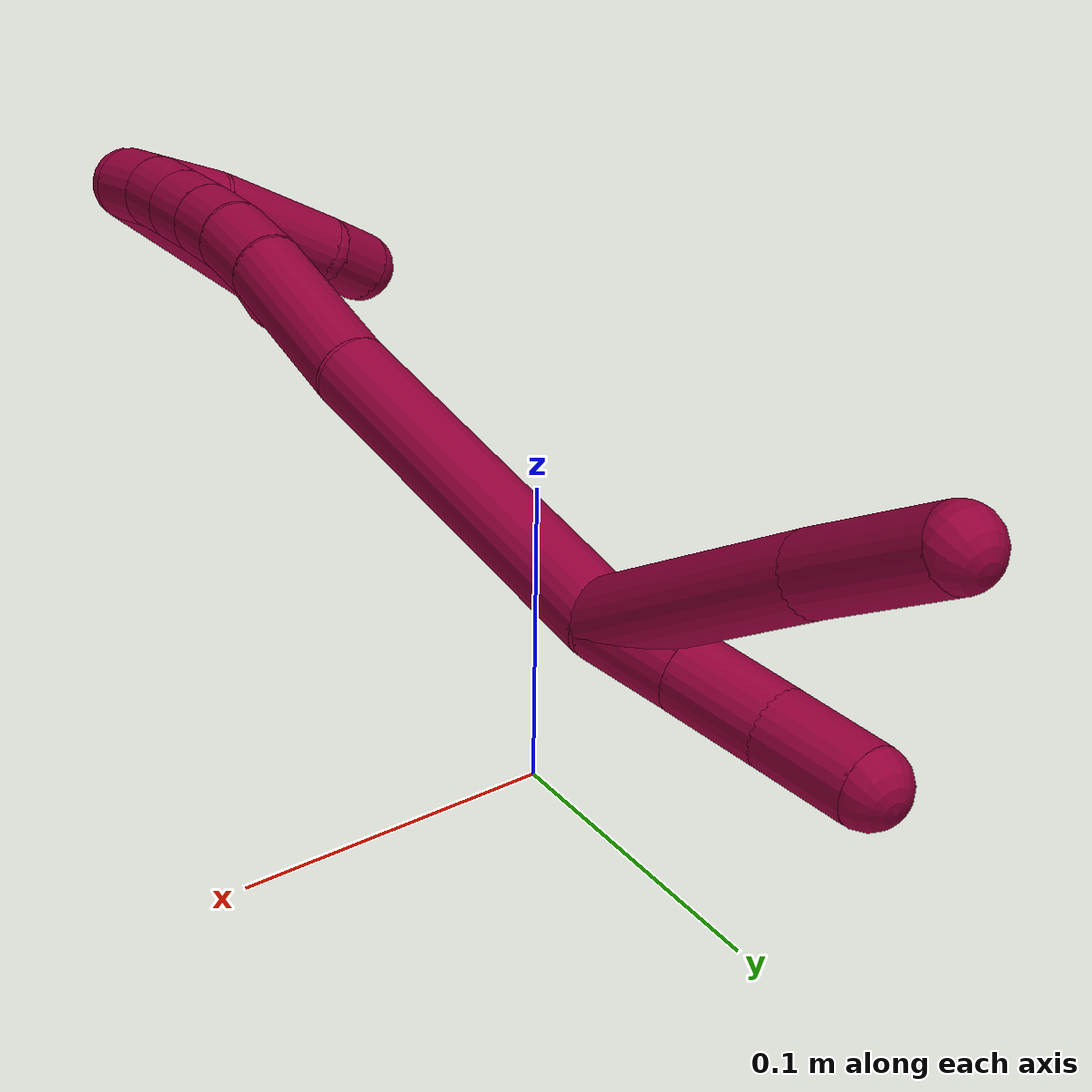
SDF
<sdf version="1.7">
 <world name="default">
  <model name="photoneo_s_sensor">
   <static>1</static>
   <pose>0 0 2 1.57079 1.57079 3.14159</pose>
   <link name="link">
    <inertial><mass>0.1</mass></inertial>
    <sensor name="sensor" type="depth">
     <update_rate>30</update_rate>
     <camera>
      <horizontal_fov>1.22</horizontal_fov>
      <image><width>1920</width><height>1200</height><format>B8G8R8</format></image>
      <clip><near>0.1</near><far>4</far></clip>
      <depth_camera><output>points</output></depth_camera>
     </camera>
     <plugin name="camera_plugin" filename="libgazebo_ros_depth_camera.so">
      <baseline>0.2</baseline>
      <alwaysOn>1</alwaysOn>
      <updateRate>0.0</updateRate>
      <cameraName>camera_ir</cameraName>
      <imageTopicName>/camera/color/image_raw</imageTopicName>
      <cameraInfoTopicName>/camera/color/camera_info</cameraInfoTopicName>
      <depthImageTopicName>/camera/depth/image_raw</depthImageTopicName>
      <depthImageCameraInfoTopicName>/camera/depth/camera_info</depthImageCameraInfoTopicName>
      <pointCloudTopicName>/camera/depth/points</pointCloudTopicName>
      <frameName>fr_optical</frameName>
      <pointCloudCutoff>0.1</pointCloudCutoff>
      <pointCloudCutoffMax>2.0</pointCloudCutoffMax>
      <distortionK1>0</distortionK1>
      <distortionK2>0</distortionK2>
      <distortionK3>0</distortionK3>
      <distortionT1>0</distortionT1>
      <distortionT2>0</distortionT2>
      <CxPrime>0</CxPrime>
      <Cx>0</Cx>
      <Cy>0</Cy>
      <focalLength>0</focalLength>
      <hackBaseline>0</hackBaseline>
     </plugin>
    </sensor>
   </link>
  </model>
  <model name="bin">
   <static>1</static>
   <link name="bottom">
    <collision name="collision-bottom">
     <pose>0 0 -0.01 0 -0 0</pose>
     <geometry><box><size>0.8 0.6 0.02</size></box></geometry>
     <surface>
      <friction><ode><mu>100</mu><mu2>100</mu2></ode></friction>
      <contact><collide_bitmask>65535</collide_bitmask></contact>
     </surface>
    </collision>
   </link>
   <link name="west_wall">
    <collision name="collision-west_wall">
     <pose>-0.41 0 0.1 0 -0 0</pose>
     <geometry><box><size>0.02 0.6 0.2</size></box></geometry>
     <surface>
      <friction><ode><mu>100</mu><mu2>100</mu2></ode></friction>
      <contact><collide_bitmask>65535</collide_bitmask></contact>
     </surface>
    </collision>
   </link>
   <link name="east_wall">
    <collision name="collision-east_wall">
     <pose>0.41 0 0.1 0 -0 0</pose>
     <geometry><box><size>0.02 0.6 0.2</size></box></geometry>
     <surface>
      <friction><ode><mu>100</mu><mu2>100</mu2></ode></friction>
      <contact><collide_bitmask>65535</collide_bitmask></contact>
     </surface>
    </collision>
   </link>
   <link name="south_wall">
    <collision name="collision-south_wall">
     <pose>0 -0.31 0.1 0 -0 0</pose>
     <geometry><box><size>0.8 0.02 0.2</size></box></geometry>
     <surface>
      <friction><ode><mu>100</mu><mu2>100</mu2></ode></friction>
      <contact><collide_bitmask>65535</collide_bitmask></contact>
     </surface>
    </collision>
   </link>
   <link name="north_wall">
    <collision name="collision-north_wall">
     <pose>0 0.31 0.1 0 -0 0</pose>
     <geometry><box><size>0.8 0.02 0.2</size></box></geometry>
     <surface>
      <friction><ode><mu>100</mu><mu2>100</mu2></ode></friction>
      <contact><collide_bitmask>65535</collide_bitmask></contact>
     </surface>
    </collision>
   </link>
  </model>
  <model name="8">
   <static>0</static>
   <link name="8">
    <collision name="collision-cylinder-e_1_2_8">
     <pose>-0.014499 0.027443 -0.033346 -2.45299 -0.32391 0.855075</pose>
     <geometry><cylinder><radius>0.0125</radius><length>0.09111</length></cylinder></geometry>
     <surface>
      <friction><ode><mu>1.16</mu><mu2>1.16</mu2><slip1>0</slip1><slip2>0</slip2></ode></friction>
      <contact><ode><kp>1e+06</kp><kd>1</kd><max_vel>0</max_vel><min_depth>0.001</min_depth></ode></contact>
     </surface>
    </collision>
    <visual name="visual-cylinder-e_1_2_8">
     <pose>-0.014499 0.027443 -0.033346 -2.45299 -0.32391 0.855075</pose>
     <geometry><cylinder><radius>0.0125</radius><length>0.09111</length></cylinder></geometry>
     <material><ambient>0.584314 0 0.227451 1</ambient></material>
    </visual>
    <collision name="collision-cylinder-e_2_8_6">
     <pose>-0.036585 0.072741 -0.088842 -2.46316 -0.260595 0.711166</pose>
     <geometry><cylinder><radius>0.0125</radius><length>0.05889</length></cylinder></geometry>
     <surface>
      <friction><ode><mu>1.16</mu><mu2>1.16</mu2><slip1>0</slip1><slip2>0</slip2></ode></friction>
      <contact><ode><kp>1e+06</kp><kd>1</kd><max_vel>0</max_vel><min_depth>0.001</min_depth></ode></contact>
     </surface>
    </collision>
    <visual name="visual-cylinder-e_2_8_6">
     <pose>-0.036585 0.072741 -0.088842 -2.46316 -0.260595 0.711166</pose>
     <geometry><cylinder><radius>0.0125</radius><length>0.05889</length></cylinder></geometry>
     <material><ambient>0.584314 0 0.227451 1</ambient></material>
    </visual>
    <collision name="collision-cylinder-e_1_2_9">
     <pose>-0.004069 0.00028 -0.016172 -3.1243 -0.246425 3.00214</pose>
     <geometry><cylinder><radius>0.0125</radius><length>0.033357</length></cylinder></geometry>
     <surface>
      <friction><ode><mu>1.16</mu><mu2>1.16</mu2><slip1>0</slip1><slip2>0</slip2></ode></friction>
      <contact><ode><kp>1e+06</kp><kd>1</kd><max_vel>0</max_vel><min_depth>0.001</min_depth></ode></contact>
     </surface>
    </collision>
    <visual name="visual-cylinder-e_1_2_9">
     <pose>-0.004069 0.00028 -0.016172 -3.1243 -0.246425 3.00214</pose>
     <geometry><cylinder><radius>0.0125</radius><length>0.033357</length></cylinder></geometry>
     <material><ambient>0.584314 0 0.227451 1</ambient></material>
    </visual>
    <collision name="collision-cylinder-e_2_9_10">
     <pose>-0.012184 0.000611 -0.048439 -3.13837 -0.246322 3.11555</pose>
     <geometry><cylinder><radius>0.0125</radius><length>0.033191</length></cylinder></geometry>
     <surface>
      <friction><ode><mu>1.16</mu><mu2>1.16</mu2><slip1>0</slip1><slip2>0</slip2></ode></friction>
      <contact><ode><kp>1e+06</kp><kd>1</kd><max_vel>0</max_vel><min_depth>0.001</min_depth></ode></contact>
     </surface>
    </collision>
    <visual name="visual-cylinder-e_2_9_10">
     <pose>-0.012184 0.000611 -0.048439 -3.13837 -0.246322 3.11555</pose>
     <geometry><cylinder><radius>0.0125</radius><length>0.033191</length></cylinder></geometry>
     <material><ambient>0.584314 0 0.227451 1</ambient></material>
    </visual>
    <collision name="collision-cylinder-e_3_10_5">
     <pose>-0.019722 0.001554 -0.080867 -3.08712 -0.210327 2.63645</pose>
     <geometry><cylinder><radius>0.0125</radius><length>0.033451</length></cylinder></geometry>
     <surface>
      <friction><ode><mu>1.16</mu><mu2>1.16</mu2><slip1>0</slip1><slip2>0</slip2></ode></friction>
      <contact><ode><kp>1e+06</kp><kd>1</kd><max_vel>0</max_vel><min_depth>0.001</min_depth></ode></contact>
     </surface>
    </collision>
    <visual name="visual-cylinder-e_3_10_5">
     <pose>-0.019722 0.001554 -0.080867 -3.08712 -0.210327 2.63645</pose>
     <geometry><cylinder><radius>0.0125</radius><length>0.033451</length></cylinder></geometry>
     <material><ambient>0.584314 0 0.227451 1</ambient></material>
    </visual>
    <collision name="collision-cylinder-e_1_2_11">
     <pose>0.004577 0.003804 0.065174 -0.058301 0.069991 -0.002042</pose>
     <geometry><cylinder><radius>0.0125</radius><length>0.13089</length></cylinder></geometry>
     <surface>
      <friction><ode><mu>1.16</mu><mu2>1.16</mu2><slip1>0</slip1><slip2>0</slip2></ode></friction>
      <contact><ode><kp>1e+06</kp><kd>1</kd><max_vel>0</max_vel><min_depth>0.001</min_depth></ode></contact>
     </surface>
    </collision>
    <visual name="visual-cylinder-e_1_2_11">
     <pose>0.004577 0.003804 0.065174 -0.058301 0.069991 -0.002042</pose>
     <geometry><cylinder><radius>0.0125</radius><length>0.13089</length></cylinder></geometry>
     <material><ambient>0.584314 0 0.227451 1</ambient></material>
    </visual>
    <collision name="collision-cylinder-e_2_11_12">
     <pose>0.007667 0.006639 0.161728 0.030879 -0.04731 -0.000731</pose>
     <geometry><cylinder><radius>0.0125</radius><length>0.062862</length></cylinder></geometry>
     <surface>
      <friction><ode><mu>1.16</mu><mu2>1.16</mu2><slip1>0</slip1><slip2>0</slip2></ode></friction>
      <contact><ode><kp>1e+06</kp><kd>1</kd><max_vel>0</max_vel><min_depth>0.001</min_depth></ode></contact>
     </surface>
    </collision>
    <visual name="visual-cylinder-e_2_11_12">
     <pose>0.007667 0.006639 0.161728 0.030879 -0.04731 -0.000731</pose>
     <geometry><cylinder><radius>0.0125</radius><length>0.062862</length></cylinder></geometry>
     <material><ambient>0.584314 0 0.227451 1</ambient></material>
    </visual>
    <collision name="collision-cylinder-e_3_12_13">
     <pose>0.00596 0.003953 0.20605 0.131902 -0.016947 -0.001119</pose>
     <geometry><cylinder><radius>0.0125</radius><length>0.026112</length></cylinder></geometry>
     <surface>
      <friction><ode><mu>1.16</mu><mu2>1.16</mu2><slip1>0</slip1><slip2>0</slip2></ode></friction>
      <contact><ode><kp>1e+06</kp><kd>1</kd><max_vel>0</max_vel><min_depth>0.001</min_depth></ode></contact>
     </surface>
    </collision>
    <visual name="visual-cylinder-e_3_12_13">
     <pose>0.00596 0.003953 0.20605 0.131902 -0.016947 -0.001119</pose>
     <geometry><cylinder><radius>0.0125</radius><length>0.026112</length></cylinder></geometry>
     <material><ambient>0.584314 0 0.227451 1</ambient></material>
    </visual>
    <collision name="collision-cylinder-e_4_13_14">
     <pose>0.006074 -0.000201 0.228743 0.244877 0.033422 0.004113</pose>
     <geometry><cylinder><radius>0.0125</radius><length>0.020117</length></cylinder></geometry>
     <surface>
      <friction><ode><mu>1.16</mu><mu2>1.16</mu2><slip1>0</slip1><slip2>0</slip2></ode></friction>
      <contact><ode><kp>1e+06</kp><kd>1</kd><max_vel>0</max_vel><min_depth>0.001</min_depth></ode></contact>
     </surface>
    </collision>
    <visual name="visual-cylinder-e_4_13_14">
     <pose>0.006074 -0.000201 0.228743 0.244877 0.033422 0.004113</pose>
     <geometry><cylinder><radius>0.0125</radius><length>0.020117</length></cylinder></geometry>
     <material><ambient>0.584314 0 0.227451 1</ambient></material>
    </visual>
    <collision name="collision-cylinder-e_5_14_15">
     <pose>0.006866 -0.00541 0.2481 0.280958 0.045532 0.00644</pose>
     <geometry><cylinder><radius>0.0125</radius><length>0.020013</length></cylinder></geometry>
     <surface>
      <friction><ode><mu>1.16</mu><mu2>1.16</mu2><slip1>0</slip1><slip2>0</slip2></ode></friction>
      <contact><ode><kp>1e+06</kp><kd>1</kd><max_vel>0</max_vel><min_depth>0.001</min_depth></ode></contact>
     </surface>
    </collision>
    <visual name="visual-cylinder-e_5_14_15">
     <pose>0.006866 -0.00541 0.2481 0.280958 0.045532 0.00644</pose>
     <geometry><cylinder><radius>0.0125</radius><length>0.020013</length></cylinder></geometry>
     <material><ambient>0.584314 0 0.227451 1</ambient></material>
    </visual>
    <collision name="collision-cylinder-e_6_15_16">
     <pose>0.007844 -0.010945 0.267301 0.28034 0.052237 0.007372</pose>
     <geometry><cylinder><radius>0.0125</radius><length>0.02</length></cylinder></geometry>
     <surface>
      <friction><ode><mu>1.16</mu><mu2>1.16</mu2><slip1>0</slip1><slip2>0</slip2></ode></friction>
      <contact><ode><kp>1e+06</kp><kd>1</kd><max_vel>0</max_vel><min_depth>0.001</min_depth></ode></contact>
     </surface>
    </collision>
    <visual name="visual-cylinder-e_6_15_16">
     <pose>0.007844 -0.010945 0.267301 0.28034 0.052237 0.007372</pose>
     <geometry><cylinder><radius>0.0125</radius><length>0.02</length></cylinder></geometry>
     <material><ambient>0.584314 0 0.227451 1</ambient></material>
    </visual>
    <collision name="collision-cylinder-e_7_16_1">
     <pose>0.010041 -0.01686 0.286243 0.325342 0.168252 0.027677</pose>
     <geometry><cylinder><radius>0.0125</radius><length>0.020006</length></cylinder></geometry>
     <surface>
      <friction><ode><mu>1.16</mu><mu2>1.16</mu2><slip1>0</slip1><slip2>0</slip2></ode></friction>
      <contact><ode><kp>1e+06</kp><kd>1</kd><max_vel>0</max_vel><min_depth>0.001</min_depth></ode></contact>
     </surface>
    </collision>
    <visual name="visual-cylinder-e_7_16_1">
     <pose>0.010041 -0.01686 0.286243 0.325342 0.168252 0.027677</pose>
     <geometry><cylinder><radius>0.0125</radius><length>0.020006</length></cylinder></geometry>
     <material><ambient>0.584314 0 0.227451 1</ambient></material>
    </visual>
    <collision name="collision-cylinder-e_1_1_17">
     <pose>-0.00149 -0.029085 0.291547 1.98973 -0.925997 -1.31076</pose>
     <geometry><cylinder><radius>0.0125</radius><length>0.033047</length></cylinder></geometry>
     <surface>
      <friction><ode><mu>1.16</mu><mu2>1.16</mu2><slip1>0</slip1><slip2>0</slip2></ode></friction>
      <contact><ode><kp>1e+06</kp><kd>1</kd><max_vel>0</max_vel><min_depth>0.001</min_depth></ode></contact>
     </surface>
    </collision>
    <visual name="visual-cylinder-e_1_1_17">
     <pose>-0.00149 -0.029085 0.291547 1.98973 -0.925997 -1.31076</pose>
     <geometry><cylinder><radius>0.0125</radius><length>0.033047</length></cylinder></geometry>
     <material><ambient>0.584314 0 0.227451 1</ambient></material>
    </visual>
    <collision name="collision-cylinder-e_2_17_18">
     <pose>-0.031068 -0.053158 0.282184 1.91178 -0.799471 -1.0782</pose>
     <geometry><cylinder><radius>0.0125</radius><length>0.045669</length></cylinder></geometry>
     <surface>
      <friction><ode><mu>1.16</mu><mu2>1.16</mu2><slip1>0</slip1><slip2>0</slip2></ode></friction>
      <contact><ode><kp>1e+06</kp><kd>1</kd><max_vel>0</max_vel><min_depth>0.001</min_depth></ode></contact>
     </surface>
    </collision>
    <visual name="visual-cylinder-e_2_17_18">
     <pose>-0.031068 -0.053158 0.282184 1.91178 -0.799471 -1.0782</pose>
     <geometry><cylinder><radius>0.0125</radius><length>0.045669</length></cylinder></geometry>
     <material><ambient>0.584314 0 0.227451 1</ambient></material>
    </visual>
    <collision name="collision-cylinder-e_3_18_4">
     <pose>-0.054375 -0.076173 0.277828 1.45074 -0.709843 -0.634955</pose>
     <geometry><cylinder><radius>0.0125</radius><length>0.021284</length></cylinder></geometry>
     <surface>
      <friction><ode><mu>1.16</mu><mu2>1.16</mu2><slip1>0</slip1><slip2>0</slip2></ode></friction>
      <contact><ode><kp>1e+06</kp><kd>1</kd><max_vel>0</max_vel><min_depth>0.001</min_depth></ode></contact>
     </surface>
    </collision>
    <visual name="visual-cylinder-e_3_18_4">
     <pose>-0.054375 -0.076173 0.277828 1.45074 -0.709843 -0.634955</pose>
     <geometry><cylinder><radius>0.0125</radius><length>0.021284</length></cylinder></geometry>
     <material><ambient>0.584314 0 0.227451 1</ambient></material>
    </visual>
    <collision name="collision-cylinder-e_1_1_19">
     <pose>-0.010193 -0.053061 0.29821 1.4916 -0.583959 -0.541676</pose>
     <geometry><cylinder><radius>0.0125</radius><length>0.079476</length></cylinder></geometry>
     <surface>
      <friction><ode><mu>1.16</mu><mu2>1.16</mu2><slip1>0</slip1><slip2>0</slip2></ode></friction>
      <contact><ode><kp>1e+06</kp><kd>1</kd><max_vel>0</max_vel><min_depth>0.001</min_depth></ode></contact>
     </surface>
    </collision>
    <visual name="visual-cylinder-e_1_1_19">
     <pose>-0.010193 -0.053061 0.29821 1.4916 -0.583959 -0.541676</pose>
     <geometry><cylinder><radius>0.0125</radius><length>0.079476</length></cylinder></geometry>
     <material><ambient>0.584314 0 0.227451 1</ambient></material>
    </visual>
    <collision name="collision-cylinder-e_2_19_3">
     <pose>-0.03518 -0.095586 0.303291 1.31696 -0.304661 -0.236441</pose>
     <geometry><cylinder><radius>0.0125</radius><length>0.020524</length></cylinder></geometry>
     <surface>
      <friction><ode><mu>1.16</mu><mu2>1.16</mu2><slip1>0</slip1><slip2>0</slip2></ode></friction>
      <contact><ode><kp>1e+06</kp><kd>1</kd><max_vel>0</max_vel><min_depth>0.001</min_depth></ode></contact>
     </surface>
    </collision>
    <visual name="visual-cylinder-e_2_19_3">
     <pose>-0.03518 -0.095586 0.303291 1.31696 -0.304661 -0.236441</pose>
     <geometry><cylinder><radius>0.0125</radius><length>0.020524</length></cylinder></geometry>
     <material><ambient>0.584314 0 0.227451 1</ambient></material>
    </visual>
    <collision name="collision-sphere-3">
     <pose>-0.038258 -0.105062 0.305749 0 -0 0</pose>
     <geometry><sphere><radius>0.0125</radius></sphere></geometry>
     <surface>
      <friction><ode><mu>1.16</mu><mu2>1.16</mu2><slip1>0</slip1><slip2>0</slip2></ode></friction>
      <contact><ode><kp>1e+06</kp><kd>1</kd><max_vel>0</max_vel><min_depth>0.001</min_depth></ode></contact>
     </surface>
    </collision>
    <visual name="visual-sphere-3">
     <pose>-0.038258 -0.105062 0.305749 0 -0 0</pose>
     <geometry><sphere><radius>0.0125</radius></sphere></geometry>
     <material><ambient>0.584314 0 0.227451 1</ambient></material>
    </visual>
    <collision name="collision-sphere-19">
     <pose>-0.032102 -0.08611 0.300833 0 -0 0</pose>
     <geometry><sphere><radius>0.0125</radius></sphere></geometry>
     <surface>
      <friction><ode><mu>1.16</mu><mu2>1.16</mu2><slip1>0</slip1><slip2>0</slip2></ode></friction>
      <contact><ode><kp>1e+06</kp><kd>1</kd><max_vel>0</max_vel><min_depth>0.001</min_depth></ode></contact>
     </surface>
    </collision>
    <visual name="visual-sphere-19">
     <pose>-0.032102 -0.08611 0.300833 0 -0 0</pose>
     <geometry><sphere><radius>0.0125</radius></sphere></geometry>
     <material><ambient>0.584314 0 0.227451 1</ambient></material>
    </visual>
    <collision name="collision-sphere-5">
     <pose>-0.023214 0.002444 -0.0972 0 -0 0</pose>
     <geometry><sphere><radius>0.0125</radius></sphere></geometry>
     <surface>
      <friction><ode><mu>1.16</mu><mu2>1.16</mu2><slip1>0</slip1><slip2>0</slip2></ode></friction>
      <contact><ode><kp>1e+06</kp><kd>1</kd><max_vel>0</max_vel><min_depth>0.001</min_depth></ode></contact>
     </surface>
    </collision>
    <visual name="visual-sphere-5">
     <pose>-0.023214 0.002444 -0.0972 0 -0 0</pose>
     <geometry><sphere><radius>0.0125</radius></sphere></geometry>
     <material><ambient>0.584314 0 0.227451 1</ambient></material>
    </visual>
    <collision name="collision-sphere-10">
     <pose>-0.01623 0.000663 -0.064534 0 -0 0</pose>
     <geometry><sphere><radius>0.0125</radius></sphere></geometry>
     <surface>
      <friction><ode><mu>1.16</mu><mu2>1.16</mu2><slip1>0</slip1><slip2>0</slip2></ode></friction>
      <contact><ode><kp>1e+06</kp><kd>1</kd><max_vel>0</max_vel><min_depth>0.001</min_depth></ode></contact>
     </surface>
    </collision>
    <visual name="visual-sphere-10">
     <pose>-0.01623 0.000663 -0.064534 0 -0 0</pose>
     <geometry><sphere><radius>0.0125</radius></sphere></geometry>
     <material><ambient>0.584314 0 0.227451 1</ambient></material>
    </visual>
    <collision name="collision-sphere-6">
     <pose>-0.044171 0.090596 -0.110992 0 -0 0</pose>
     <geometry><sphere><radius>0.0125</radius></sphere></geometry>
     <surface>
      <friction><ode><mu>1.16</mu><mu2>1.16</mu2><slip1>0</slip1><slip2>0</slip2></ode></friction>
      <contact><ode><kp>1e+06</kp><kd>1</kd><max_vel>0</max_vel><min_depth>0.001</min_depth></ode></contact>
     </surface>
    </collision>
    <visual name="visual-sphere-6">
     <pose>-0.044171 0.090596 -0.110992 0 -0 0</pose>
     <geometry><sphere><radius>0.0125</radius></sphere></geometry>
     <material><ambient>0.584314 0 0.227451 1</ambient></material>
    </visual>
    <collision name="collision-sphere-9">
     <pose>-0.008137 0.00056 -0.032345 0 -0 0</pose>
     <geometry><sphere><radius>0.0125</radius></sphere></geometry>
     <surface>
      <friction><ode><mu>1.16</mu><mu2>1.16</mu2><slip1>0</slip1><slip2>0</slip2></ode></friction>
      <contact><ode><kp>1e+06</kp><kd>1</kd><max_vel>0</max_vel><min_depth>0.001</min_depth></ode></contact>
     </surface>
    </collision>
    <visual name="visual-sphere-9">
     <pose>-0.008137 0.00056 -0.032345 0 -0 0</pose>
     <geometry><sphere><radius>0.0125</radius></sphere></geometry>
     <material><ambient>0.584314 0 0.227451 1</ambient></material>
    </visual>
    <collision name="collision-sphere-2">
     <geometry><sphere><radius>0.0125</radius></sphere></geometry>
     <surface>
      <friction><ode><mu>1.16</mu><mu2>1.16</mu2><slip1>0</slip1><slip2>0</slip2></ode></friction>
      <contact><ode><kp>1e+06</kp><kd>1</kd><max_vel>0</max_vel><min_depth>0.001</min_depth></ode></contact>
     </surface>
    </collision>
    <visual name="visual-sphere-2">
     <geometry><sphere><radius>0.0125</radius></sphere></geometry>
     <material><ambient>0.584314 0 0.227451 1</ambient></material>
    </visual>
    <collision name="collision-sphere-8">
     <pose>-0.028998 0.054886 -0.066691 0 -0 0</pose>
     <geometry><sphere><radius>0.0125</radius></sphere></geometry>
     <surface>
      <friction><ode><mu>1.16</mu><mu2>1.16</mu2><slip1>0</slip1><slip2>0</slip2></ode></friction>
      <contact><ode><kp>1e+06</kp><kd>1</kd><max_vel>0</max_vel><min_depth>0.001</min_depth></ode></contact>
     </surface>
    </collision>
    <visual name="visual-sphere-8">
     <pose>-0.028998 0.054886 -0.066691 0 -0 0</pose>
     <geometry><sphere><radius>0.0125</radius></sphere></geometry>
     <material><ambient>0.584314 0 0.227451 1</ambient></material>
    </visual>
    <collision name="collision-sphere-11">
     <pose>0.009154 0.007608 0.130348 0 -0 0</pose>
     <geometry><sphere><radius>0.0125</radius></sphere></geometry>
     <surface>
      <friction><ode><mu>1.16</mu><mu2>1.16</mu2><slip1>0</slip1><slip2>0</slip2></ode></friction>
      <contact><ode><kp>1e+06</kp><kd>1</kd><max_vel>0</max_vel><min_depth>0.001</min_depth></ode></contact>
     </surface>
    </collision>
    <visual name="visual-sphere-11">
     <pose>0.009154 0.007608 0.130348 0 -0 0</pose>
     <geometry><sphere><radius>0.0125</radius></sphere></geometry>
     <material><ambient>0.584314 0 0.227451 1</ambient></material>
    </visual>
    <collision name="collision-sphere-12">
     <pose>0.006181 0.005669 0.193109 0 -0 0</pose>
     <geometry><sphere><radius>0.0125</radius></sphere></geometry>
     <surface>
      <friction><ode><mu>1.16</mu><mu2>1.16</mu2><slip1>0</slip1><slip2>0</slip2></ode></friction>
      <contact><ode><kp>1e+06</kp><kd>1</kd><max_vel>0</max_vel><min_depth>0.001</min_depth></ode></contact>
     </surface>
    </collision>
    <visual name="visual-sphere-12">
     <pose>0.006181 0.005669 0.193109 0 -0 0</pose>
     <geometry><sphere><radius>0.0125</radius></sphere></geometry>
     <material><ambient>0.584314 0 0.227451 1</ambient></material>
    </visual>
    <collision name="collision-sphere-13">
     <pose>0.005738 0.002236 0.21899 0 -0 0</pose>
     <geometry><sphere><radius>0.0125</radius></sphere></geometry>
     <surface>
      <friction><ode><mu>1.16</mu><mu2>1.16</mu2><slip1>0</slip1><slip2>0</slip2></ode></friction>
      <contact><ode><kp>1e+06</kp><kd>1</kd><max_vel>0</max_vel><min_depth>0.001</min_depth></ode></contact>
     </surface>
    </collision>
    <visual name="visual-sphere-13">
     <pose>0.005738 0.002236 0.21899 0 -0 0</pose>
     <geometry><sphere><radius>0.0125</radius></sphere></geometry>
     <material><ambient>0.584314 0 0.227451 1</ambient></material>
    </visual>
    <collision name="collision-sphere-14">
     <pose>0.00641 -0.002639 0.238496 0 -0 0</pose>
     <geometry><sphere><radius>0.0125</radius></sphere></geometry>
     <surface>
      <friction><ode><mu>1.16</mu><mu2>1.16</mu2><slip1>0</slip1><slip2>0</slip2></ode></friction>
      <contact><ode><kp>1e+06</kp><kd>1</kd><max_vel>0</max_vel><min_depth>0.001</min_depth></ode></contact>
     </surface>
    </collision>
    <visual name="visual-sphere-14">
     <pose>0.00641 -0.002639 0.238496 0 -0 0</pose>
     <geometry><sphere><radius>0.0125</radius></sphere></geometry>
     <material><ambient>0.584314 0 0.227451 1</ambient></material>
    </visual>
    <collision name="collision-sphere-15">
     <pose>0.007321 -0.008182 0.257705 0 -0 0</pose>
     <geometry><sphere><radius>0.0125</radius></sphere></geometry>
     <surface>
      <friction><ode><mu>1.16</mu><mu2>1.16</mu2><slip1>0</slip1><slip2>0</slip2></ode></friction>
      <contact><ode><kp>1e+06</kp><kd>1</kd><max_vel>0</max_vel><min_depth>0.001</min_depth></ode></contact>
     </surface>
    </collision>
    <visual name="visual-sphere-15">
     <pose>0.007321 -0.008182 0.257705 0 -0 0</pose>
     <geometry><sphere><radius>0.0125</radius></sphere></geometry>
     <material><ambient>0.584314 0 0.227451 1</ambient></material>
    </visual>
    <collision name="collision-sphere-16">
     <pose>0.008366 -0.013708 0.276898 0 -0 0</pose>
     <geometry><sphere><radius>0.0125</radius></sphere></geometry>
     <surface>
      <friction><ode><mu>1.16</mu><mu2>1.16</mu2><slip1>0</slip1><slip2>0</slip2></ode></friction>
      <contact><ode><kp>1e+06</kp><kd>1</kd><max_vel>0</max_vel><min_depth>0.001</min_depth></ode></contact>
     </surface>
    </collision>
    <visual name="visual-sphere-16">
     <pose>0.008366 -0.013708 0.276898 0 -0 0</pose>
     <geometry><sphere><radius>0.0125</radius></sphere></geometry>
     <material><ambient>0.584314 0 0.227451 1</ambient></material>
    </visual>
    <collision name="collision-sphere-1">
     <pose>0.011716 -0.020013 0.295587 0 -0 0</pose>
     <geometry><sphere><radius>0.0125</radius></sphere></geometry>
     <surface>
      <friction><ode><mu>1.16</mu><mu2>1.16</mu2><slip1>0</slip1><slip2>0</slip2></ode></friction>
      <contact><ode><kp>1e+06</kp><kd>1</kd><max_vel>0</max_vel><min_depth>0.001</min_depth></ode></contact>
     </surface>
    </collision>
    <visual name="visual-sphere-1">
     <pose>0.011716 -0.020013 0.295587 0 -0 0</pose>
     <geometry><sphere><radius>0.0125</radius></sphere></geometry>
     <material><ambient>0.584314 0 0.227451 1</ambient></material>
    </visual>
    <collision name="collision-sphere-18">
     <pose>-0.04744 -0.06816 0.276861 0 -0 0</pose>
     <geometry><sphere><radius>0.0125</radius></sphere></geometry>
     <surface>
      <friction><ode><mu>1.16</mu><mu2>1.16</mu2><slip1>0</slip1><slip2>0</slip2></ode></friction>
      <contact><ode><kp>1e+06</kp><kd>1</kd><max_vel>0</max_vel><min_depth>0.001</min_depth></ode></contact>
     </surface>
    </collision>
    <visual name="visual-sphere-18">
     <pose>-0.04744 -0.06816 0.276861 0 -0 0</pose>
     <geometry><sphere><radius>0.0125</radius></sphere></geometry>
     <material><ambient>0.584314 0 0.227451 1</ambient></material>
    </visual>
    <collision name="collision-sphere-17">
     <pose>-0.014696 -0.038157 0.287507 0 -0 0</pose>
     <geometry><sphere><radius>0.0125</radius></sphere></geometry>
     <surface>
      <friction><ode><mu>1.16</mu><mu2>1.16</mu2><slip1>0</slip1><slip2>0</slip2></ode></friction>
      <contact><ode><kp>1e+06</kp><kd>1</kd><max_vel>0</max_vel><min_depth>0.001</min_depth></ode></contact>
     </surface>
    </collision>
    <visual name="visual-sphere-17">
     <pose>-0.014696 -0.038157 0.287507 0 -0 0</pose>
     <geometry><sphere><radius>0.0125</radius></sphere></geometry>
     <material><ambient>0.584314 0 0.227451 1</ambient></material>
    </visual>
    <collision name="collision-sphere-4">
     <pose>-0.061311 -0.084187 0.278795 0 -0 0</pose>
     <geometry><sphere><radius>0.0125</radius></sphere></geometry>
     <surface>
      <friction><ode><mu>1.16</mu><mu2>1.16</mu2><slip1>0</slip1><slip2>0</slip2></ode></friction>
      <contact><ode><kp>1e+06</kp><kd>1</kd><max_vel>0</max_vel><min_depth>0.001</min_depth></ode></contact>
     </surface>
    </collision>
    <visual name="visual-sphere-4">
     <pose>-0.061311 -0.084187 0.278795 0 -0 0</pose>
     <geometry><sphere><radius>0.0125</radius></sphere></geometry>
     <material><ambient>0.584314 0 0.227451 1</ambient></material>
    </visual>
    <inertial>
     <pose>-0.009305 -0.005298 0.11994 0 -0 0</pose>
     <mass>0.75</mass>
     <inertia>
      <ixx>0.000324</ixx>
      <ixy>0</ixy>
      <ixz>0</ixz>
      <iyy>0.000254</iyy>
      <iyz>0</iyz>
      <izz>4.8e-05</izz>
     </inertia>
    </inertial>
   </link>
   <pose>-0.006379 0.024254 0.066136 1.43789 0.204773 -0.079948</pose>
  </model>
 </world>
</sdf>
